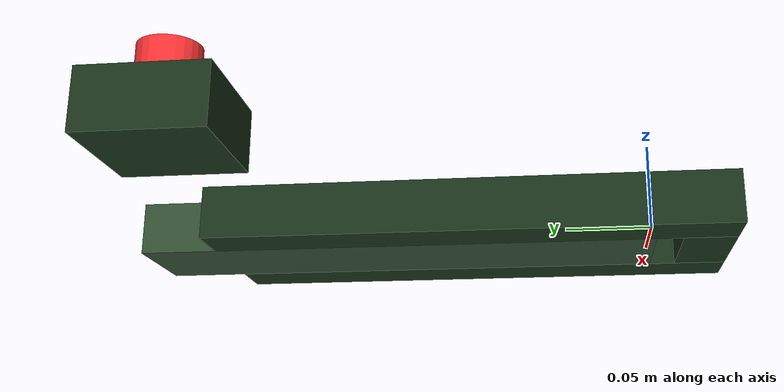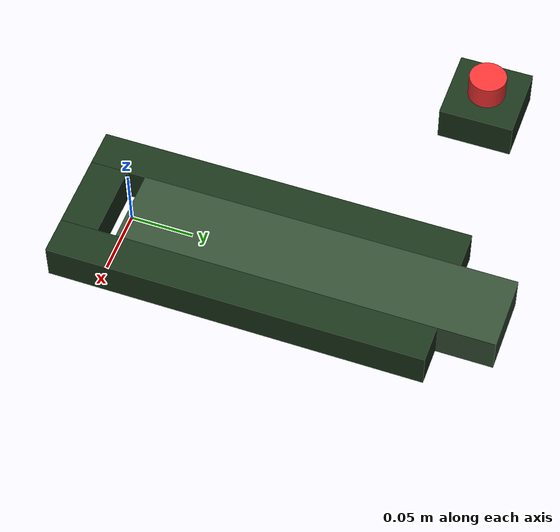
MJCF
<mujoco model="catapult">
    <compiler angle="radian" autolimits="true" />
    <option impratio="10" />
    <default>
        <default class="visual">
            <geom contype="0" conaffinity="0" group="2" />
        </default>
        <default class="collision">
            <geom group="3" condim="3" friction="0.99" priority="1" />
        </default>
    </default>
    <asset>
        <material name="material_0" rgba="0.1 0.2 0.1 1" specular="0.0" shininess="0.0" />
        <material name="material_1" rgba="1.0 0.2 0.2 1" specular="0.0" shininess="0.0" />
        <material name="material_2" rgba="0.2 0.3 0.2 1" specular="0.0" shininess="0.0" />
    </asset>
    <worldbody>
        <body name="catapult">
            <geom type="box" size="0.03 0.03 0.015" pos="-0.2 0.225 0" class="collision" />
            <geom type="box" size="0.03 0.03 0.015" pos="-0.2 0.225 0" class="visual"
                material="material_0" />

            <body name="button" pos="-0.2 0.225 0.015">
                <joint name="button_slider" type="slide" range="0 0.01" axis="0 0 -1"
                    damping="0.01"
                    springref="0" stiffness="0.05" />
                <geom type="capsule" size="0.015 0.006" class="collision" mass="0.00001" />
                <geom type="cylinder" size="0.015 0.02" class="visual" mass="0.0"
                    material="material_1" />
                <camera name="button_side_view" pos="-0.08 0.08 0.08" euler="-0.8 -0.6 0" />
            </body>

            <geom type="box" size="0.015 0.15 0.015" pos="0.045 0.105 0" class="collision" />
            <geom type="box" size="0.015 0.15 0.015" pos="0.045 0.105 0" class="visual"
                material="material_0" />

            <geom type="box" size="0.015 0.15 0.015" pos="-0.045 0.105 0" class="collision" />
            <geom type="box" size="0.015 0.15 0.015" pos="-0.045 0.105 0" class="visual"
                material="material_0" />

            <geom type="box" size="0.03 0.015 0.015" pos="0.0 -0.03 0" class="collision" />
            <geom type="box" size="0.03 0.015 0.015" pos="0.0 -0.03 0" class="visual"
                material="material_0" />
            <body name="catapult_arm">
                <joint name="catapult_hinge" damping="4.5" range="0.0 1.0"
                    type='hinge' ref="0.0" axis="1 0 0" springref="1.0" stiffness="100" />
                <geom type="box" size="0.03 0.15 0.015" pos="0 0.15 0" class="collision" mass="0" />
                <geom type="box" size="0.03 0.15 0.015" pos="0 0.15 0" class="visual"
                    material="material_2" mass="0.5" />
            </body>
        </body>
    </worldbody>
    <contact>
        <exclude body1="catapult" body2="button" />
        <exclude body1="catapult" body2="catapult_arm" />
    </contact>
    <equality>
        <weld name="catapult_trigger" body1="catapult_arm" relpose="0 5 0 0 0 0 0" torquescale="100" />
    </equality>
</mujoco>
